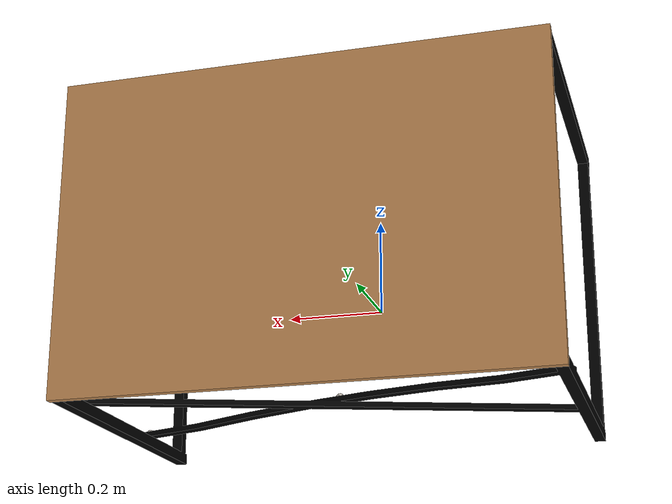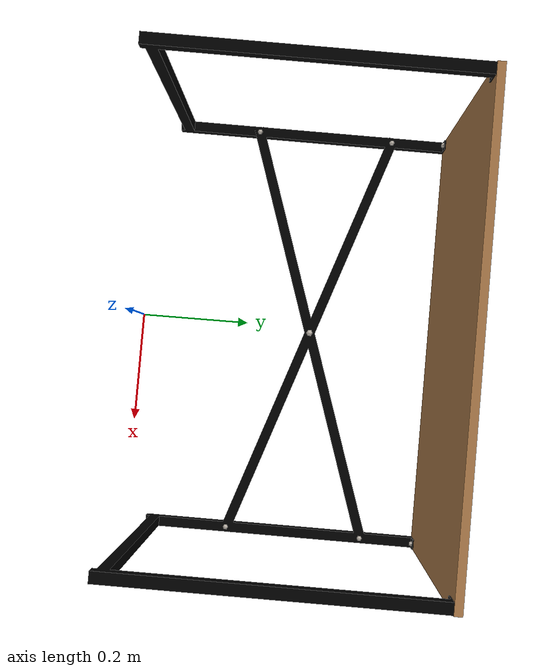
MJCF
<mujoco model="desk">
  <default>
    <default class="visual">
      <geom group="2" type="mesh" contype="0" conaffinity="0"/>
    </default>
    <default class="collision">
      <geom group="3" type="mesh"/>
    </default>
  </default>
  <asset>
    <texture type="2d" name="Metal009_2K_Color" file="Metal009_2K_Color.png"/>
    <material name="Bolt" texture="Metal009_2K_Color" specular="0.5" shininess="0.5"/>
    <material name="Metal" specular="0.5" shininess="0.003360637" rgba="0.000000 0.000000 0.000000 1.000000"/>
    <texture type="2d" name="Wood009_2K_Color" file="Wood009_2K_Color.png"/>
    <material name="Wood" texture="Wood009_2K_Color" specular="0.5" shininess="0.0"/>
    <mesh file="desk_0.obj"/>
    <mesh file="desk_1.obj"/>
    <mesh file="desk_2.obj"/>
  </asset>
  <worldbody>
    <body name="desk">
      <geom mesh="desk_0" material="Bolt" class="visual"/>
      <geom mesh="desk_1" material="Metal" class="visual"/>
      <geom mesh="desk_2" material="Wood" class="visual"/>
      <geom mesh="desk_0" class="collision"/>
      <geom mesh="desk_1" class="collision"/>
      <geom mesh="desk_2" class="collision"/>
    </body>
  </worldbody>
</mujoco>
